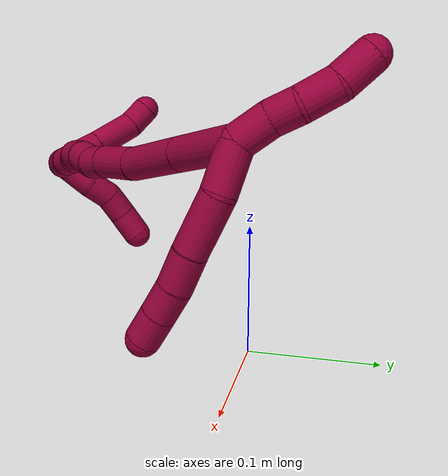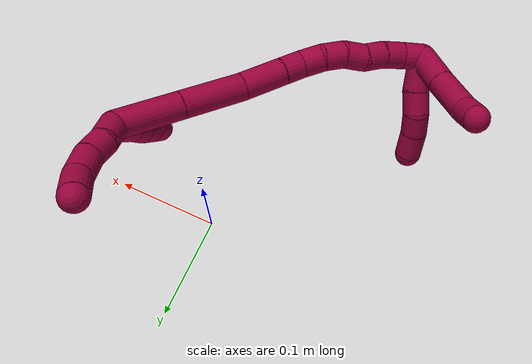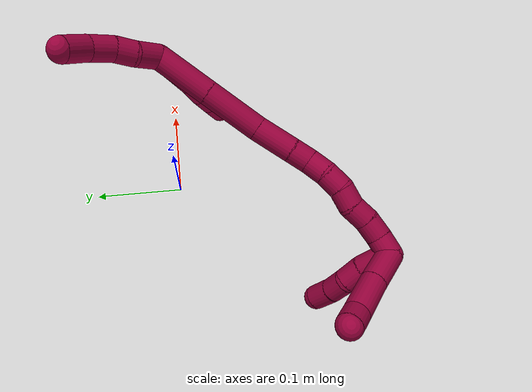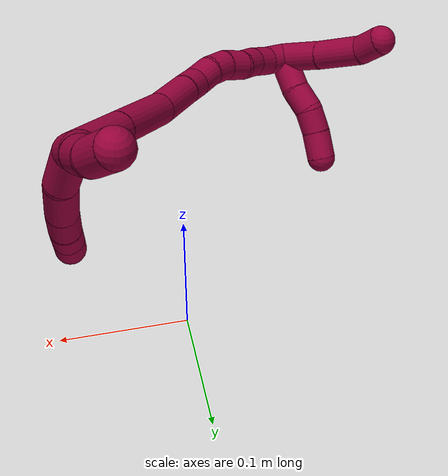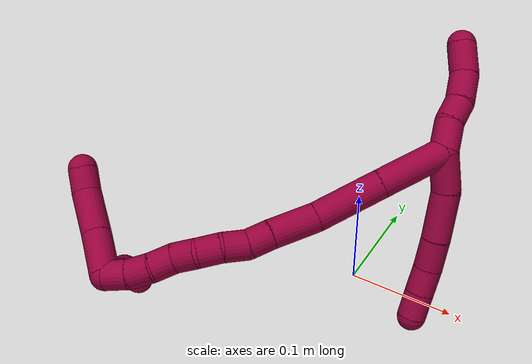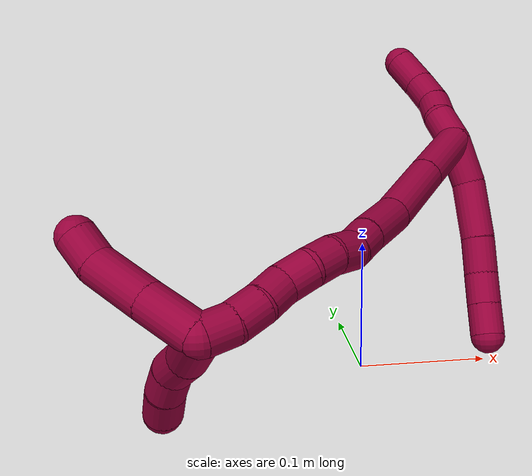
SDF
<sdf version="1.7">
 <world name="default">
  <model name="8">
   <static>0</static>
   <link name="8">
    <collision name="collision-cylinder-e_1_2_8">
     <pose>0.003625 -0.003535 -0.016295 2.92796 0.2141 1.57301</pose>
     <geometry><cylinder><radius>0.0125</radius><length>0.034127</length></cylinder></geometry>
     <surface>
      <friction><ode><mu>1.16</mu><mu2>1.16</mu2><slip1>0</slip1><slip2>0</slip2></ode></friction>
      <contact><ode><kp>1e+06</kp><kd>1</kd><max_vel>0</max_vel><min_depth>0.001</min_depth></ode></contact>
     </surface>
    </collision>
    <visual name="visual-cylinder-e_1_2_8">
     <pose>0.003625 -0.003535 -0.016295 2.92796 0.2141 1.57301</pose>
     <geometry><cylinder><radius>0.0125</radius><length>0.034127</length></cylinder></geometry>
     <material><ambient>0.584314 0 0.227451 1</ambient></material>
    </visual>
    <collision name="collision-cylinder-e_2_8_9">
     <pose>0.006654 -0.014061 -0.052827 2.809 -0.027891 -0.165796</pose>
     <geometry><cylinder><radius>0.0125</radius><length>0.042838</length></cylinder></geometry>
     <surface>
      <friction><ode><mu>1.16</mu><mu2>1.16</mu2><slip1>0</slip1><slip2>0</slip2></ode></friction>
      <contact><ode><kp>1e+06</kp><kd>1</kd><max_vel>0</max_vel><min_depth>0.001</min_depth></ode></contact>
     </surface>
    </collision>
    <visual name="visual-cylinder-e_2_8_9">
     <pose>0.006654 -0.014061 -0.052827 2.809 -0.027891 -0.165796</pose>
     <geometry><cylinder><radius>0.0125</radius><length>0.042838</length></cylinder></geometry>
     <material><ambient>0.584314 0 0.227451 1</ambient></material>
    </visual>
    <collision name="collision-cylinder-e_3_9_10">
     <pose>0.00491 -0.024851 -0.085924 2.85429 -0.085277 -0.573635</pose>
     <geometry><cylinder><radius>0.0125</radius><length>0.026915</length></cylinder></geometry>
     <surface>
      <friction><ode><mu>1.16</mu><mu2>1.16</mu2><slip1>0</slip1><slip2>0</slip2></ode></friction>
      <contact><ode><kp>1e+06</kp><kd>1</kd><max_vel>0</max_vel><min_depth>0.001</min_depth></ode></contact>
     </surface>
    </collision>
    <visual name="visual-cylinder-e_3_9_10">
     <pose>0.00491 -0.024851 -0.085924 2.85429 -0.085277 -0.573635</pose>
     <geometry><cylinder><radius>0.0125</radius><length>0.026915</length></cylinder></geometry>
     <material><ambient>0.584314 0 0.227451 1</ambient></material>
    </visual>
    <collision name="collision-cylinder-e_4_10_11">
     <pose>0.002238 -0.033153 -0.109419 2.74117 -0.131373 -0.626934</pose>
     <geometry><cylinder><radius>0.0125</radius><length>0.023302</length></cylinder></geometry>
     <surface>
      <friction><ode><mu>1.16</mu><mu2>1.16</mu2><slip1>0</slip1><slip2>0</slip2></ode></friction>
      <contact><ode><kp>1e+06</kp><kd>1</kd><max_vel>0</max_vel><min_depth>0.001</min_depth></ode></contact>
     </surface>
    </collision>
    <visual name="visual-cylinder-e_4_10_11">
     <pose>0.002238 -0.033153 -0.109419 2.74117 -0.131373 -0.626934</pose>
     <geometry><cylinder><radius>0.0125</radius><length>0.023302</length></cylinder></geometry>
     <material><ambient>0.584314 0 0.227451 1</ambient></material>
    </visual>
    <collision name="collision-cylinder-e_5_11_6">
     <pose>-0.000713 -0.042183 -0.130431 2.7301 -0.125192 -0.583513</pose>
     <geometry><cylinder><radius>0.0125</radius><length>0.022818</length></cylinder></geometry>
     <surface>
      <friction><ode><mu>1.16</mu><mu2>1.16</mu2><slip1>0</slip1><slip2>0</slip2></ode></friction>
      <contact><ode><kp>1e+06</kp><kd>1</kd><max_vel>0</max_vel><min_depth>0.001</min_depth></ode></contact>
     </surface>
    </collision>
    <visual name="visual-cylinder-e_5_11_6">
     <pose>-0.000713 -0.042183 -0.130431 2.7301 -0.125192 -0.583513</pose>
     <geometry><cylinder><radius>0.0125</radius><length>0.022818</length></cylinder></geometry>
     <material><ambient>0.584314 0 0.227451 1</ambient></material>
    </visual>
    <collision name="collision-cylinder-e_1_2_12">
     <pose>-0.000924 0.009772 0.008682 -0.844384 -0.07054 0.031697</pose>
     <geometry><cylinder><radius>0.0125</radius><length>0.026208</length></cylinder></geometry>
     <surface>
      <friction><ode><mu>1.16</mu><mu2>1.16</mu2><slip1>0</slip1><slip2>0</slip2></ode></friction>
      <contact><ode><kp>1e+06</kp><kd>1</kd><max_vel>0</max_vel><min_depth>0.001</min_depth></ode></contact>
     </surface>
    </collision>
    <visual name="visual-cylinder-e_1_2_12">
     <pose>-0.000924 0.009772 0.008682 -0.844384 -0.07054 0.031697</pose>
     <geometry><cylinder><radius>0.0125</radius><length>0.026208</length></cylinder></geometry>
     <material><ambient>0.584314 0 0.227451 1</ambient></material>
    </visual>
    <collision name="collision-cylinder-e_2_12_13">
     <pose>-4.4e-05 0.028055 0.022989 -0.986831 0.174919 -0.094239</pose>
     <geometry><cylinder><radius>0.0125</radius><length>0.020721</length></cylinder></geometry>
     <surface>
      <friction><ode><mu>1.16</mu><mu2>1.16</mu2><slip1>0</slip1><slip2>0</slip2></ode></friction>
      <contact><ode><kp>1e+06</kp><kd>1</kd><max_vel>0</max_vel><min_depth>0.001</min_depth></ode></contact>
     </surface>
    </collision>
    <visual name="visual-cylinder-e_2_12_13">
     <pose>-4.4e-05 0.028055 0.022989 -0.986831 0.174919 -0.094239</pose>
     <geometry><cylinder><radius>0.0125</radius><length>0.020721</length></cylinder></geometry>
     <material><ambient>0.584314 0 0.227451 1</ambient></material>
    </visual>
    <collision name="collision-cylinder-e_3_13_14">
     <pose>0.000544 0.046957 0.035995 -0.953165 -0.095048 0.049098</pose>
     <geometry><cylinder><radius>0.0125</radius><length>0.025607</length></cylinder></geometry>
     <surface>
      <friction><ode><mu>1.16</mu><mu2>1.16</mu2><slip1>0</slip1><slip2>0</slip2></ode></friction>
      <contact><ode><kp>1e+06</kp><kd>1</kd><max_vel>0</max_vel><min_depth>0.001</min_depth></ode></contact>
     </surface>
    </collision>
    <visual name="visual-cylinder-e_3_13_14">
     <pose>0.000544 0.046957 0.035995 -0.953165 -0.095048 0.049098</pose>
     <geometry><cylinder><radius>0.0125</radius><length>0.025607</length></cylinder></geometry>
     <material><ambient>0.584314 0 0.227451 1</ambient></material>
    </visual>
    <collision name="collision-cylinder-e_4_14_5">
     <pose>-0.004915 0.066334 0.052854 -0.758737 -0.314132 0.126111</pose>
     <geometry><cylinder><radius>0.0125</radius><length>0.027464</length></cylinder></geometry>
     <surface>
      <friction><ode><mu>1.16</mu><mu2>1.16</mu2><slip1>0</slip1><slip2>0</slip2></ode></friction>
      <contact><ode><kp>1e+06</kp><kd>1</kd><max_vel>0</max_vel><min_depth>0.001</min_depth></ode></contact>
     </surface>
    </collision>
    <visual name="visual-cylinder-e_4_14_5">
     <pose>-0.004915 0.066334 0.052854 -0.758737 -0.314132 0.126111</pose>
     <geometry><cylinder><radius>0.0125</radius><length>0.027464</length></cylinder></geometry>
     <material><ambient>0.584314 0 0.227451 1</ambient></material>
    </visual>
    <collision name="collision-cylinder-e_1_2_15">
     <pose>-0.020947 -0.018751 -0.009839 2.05402 -0.779978 -1.19417</pose>
     <geometry><cylinder><radius>0.0125</radius><length>0.059571</length></cylinder></geometry>
     <surface>
      <friction><ode><mu>1.16</mu><mu2>1.16</mu2><slip1>0</slip1><slip2>0</slip2></ode></friction>
      <contact><ode><kp>1e+06</kp><kd>1</kd><max_vel>0</max_vel><min_depth>0.001</min_depth></ode></contact>
     </surface>
    </collision>
    <visual name="visual-cylinder-e_1_2_15">
     <pose>-0.020947 -0.018751 -0.009839 2.05402 -0.779978 -1.19417</pose>
     <geometry><cylinder><radius>0.0125</radius><length>0.059571</length></cylinder></geometry>
     <material><ambient>0.584314 0 0.227451 1</ambient></material>
    </visual>
    <collision name="collision-cylinder-e_2_15_16">
     <pose>-0.062739 -0.056273 -0.029652 2.05921 -0.775621 -1.19386</pose>
     <geometry><cylinder><radius>0.0125</radius><length>0.059543</length></cylinder></geometry>
     <surface>
      <friction><ode><mu>1.16</mu><mu2>1.16</mu2><slip1>0</slip1><slip2>0</slip2></ode></friction>
      <contact><ode><kp>1e+06</kp><kd>1</kd><max_vel>0</max_vel><min_depth>0.001</min_depth></ode></contact>
     </surface>
    </collision>
    <visual name="visual-cylinder-e_2_15_16">
     <pose>-0.062739 -0.056273 -0.029652 2.05921 -0.775621 -1.19386</pose>
     <geometry><cylinder><radius>0.0125</radius><length>0.059543</length></cylinder></geometry>
     <material><ambient>0.584314 0 0.227451 1</ambient></material>
    </visual>
    <collision name="collision-cylinder-e_3_16_17">
     <pose>-0.098054 -0.088365 -0.0433 1.83991 -0.808448 -1.02362</pose>
     <geometry><cylinder><radius>0.0125</radius><length>0.040017</length></cylinder></geometry>
     <surface>
      <friction><ode><mu>1.16</mu><mu2>1.16</mu2><slip1>0</slip1><slip2>0</slip2></ode></friction>
      <contact><ode><kp>1e+06</kp><kd>1</kd><max_vel>0</max_vel><min_depth>0.001</min_depth></ode></contact>
     </surface>
    </collision>
    <visual name="visual-cylinder-e_3_16_17">
     <pose>-0.098054 -0.088365 -0.0433 1.83991 -0.808448 -1.02362</pose>
     <geometry><cylinder><radius>0.0125</radius><length>0.040017</length></cylinder></geometry>
     <material><ambient>0.584314 0 0.227451 1</ambient></material>
    </visual>
    <collision name="collision-cylinder-e_4_17_18">
     <pose>-0.119615 -0.108475 -0.049445 1.91989 -0.776006 -1.05674</pose>
     <geometry><cylinder><radius>0.0125</radius><length>0.020244</length></cylinder></geometry>
     <surface>
      <friction><ode><mu>1.16</mu><mu2>1.16</mu2><slip1>0</slip1><slip2>0</slip2></ode></friction>
      <contact><ode><kp>1e+06</kp><kd>1</kd><max_vel>0</max_vel><min_depth>0.001</min_depth></ode></contact>
     </surface>
    </collision>
    <visual name="visual-cylinder-e_4_17_18">
     <pose>-0.119615 -0.108475 -0.049445 1.91989 -0.776006 -1.05674</pose>
     <geometry><cylinder><radius>0.0125</radius><length>0.020244</length></cylinder></geometry>
     <material><ambient>0.584314 0 0.227451 1</ambient></material>
    </visual>
    <collision name="collision-cylinder-e_5_18_19">
     <pose>-0.135174 -0.121062 -0.051706 1.5346 -0.97014 -0.940582</pose>
     <geometry><cylinder><radius>0.0125</radius><length>0.020532</length></cylinder></geometry>
     <surface>
      <friction><ode><mu>1.16</mu><mu2>1.16</mu2><slip1>0</slip1><slip2>0</slip2></ode></friction>
      <contact><ode><kp>1e+06</kp><kd>1</kd><max_vel>0</max_vel><min_depth>0.001</min_depth></ode></contact>
     </surface>
    </collision>
    <visual name="visual-cylinder-e_5_18_19">
     <pose>-0.135174 -0.121062 -0.051706 1.5346 -0.97014 -0.940582</pose>
     <geometry><cylinder><radius>0.0125</radius><length>0.020532</length></cylinder></geometry>
     <material><ambient>0.584314 0 0.227451 1</ambient></material>
    </visual>
    <collision name="collision-cylinder-e_6_19_20">
     <pose>-0.152175 -0.131778 -0.053364 1.93375 -1.01828 -1.36057</pose>
     <geometry><cylinder><radius>0.0125</radius><length>0.020047</length></cylinder></geometry>
     <surface>
      <friction><ode><mu>1.16</mu><mu2>1.16</mu2><slip1>0</slip1><slip2>0</slip2></ode></friction>
      <contact><ode><kp>1e+06</kp><kd>1</kd><max_vel>0</max_vel><min_depth>0.001</min_depth></ode></contact>
     </surface>
    </collision>
    <visual name="visual-cylinder-e_6_19_20">
     <pose>-0.152175 -0.131778 -0.053364 1.93375 -1.01828 -1.36057</pose>
     <geometry><cylinder><radius>0.0125</radius><length>0.020047</length></cylinder></geometry>
     <material><ambient>0.584314 0 0.227451 1</ambient></material>
    </visual>
    <collision name="collision-cylinder-e_7_20_21">
     <pose>-0.169811 -0.139131 -0.05861 2.51704 -1.14176 -2.20999</pose>
     <geometry><cylinder><radius>0.0125</radius><length>0.020024</length></cylinder></geometry>
     <surface>
      <friction><ode><mu>1.16</mu><mu2>1.16</mu2><slip1>0</slip1><slip2>0</slip2></ode></friction>
      <contact><ode><kp>1e+06</kp><kd>1</kd><max_vel>0</max_vel><min_depth>0.001</min_depth></ode></contact>
     </surface>
    </collision>
    <visual name="visual-cylinder-e_7_20_21">
     <pose>-0.169811 -0.139131 -0.05861 2.51704 -1.14176 -2.20999</pose>
     <geometry><cylinder><radius>0.0125</radius><length>0.020024</length></cylinder></geometry>
     <material><ambient>0.584314 0 0.227451 1</ambient></material>
    </visual>
    <collision name="collision-cylinder-e_8_21_22">
     <pose>-0.186661 -0.146955 -0.065324 2.12504 -0.885081 -1.40972</pose>
     <geometry><cylinder><radius>0.0125</radius><length>0.020014</length></cylinder></geometry>
     <surface>
      <friction><ode><mu>1.16</mu><mu2>1.16</mu2><slip1>0</slip1><slip2>0</slip2></ode></friction>
      <contact><ode><kp>1e+06</kp><kd>1</kd><max_vel>0</max_vel><min_depth>0.001</min_depth></ode></contact>
     </surface>
    </collision>
    <visual name="visual-cylinder-e_8_21_22">
     <pose>-0.186661 -0.146955 -0.065324 2.12504 -0.885081 -1.40972</pose>
     <geometry><cylinder><radius>0.0125</radius><length>0.020014</length></cylinder></geometry>
     <material><ambient>0.584314 0 0.227451 1</ambient></material>
    </visual>
    <collision name="collision-cylinder-e_9_22_23">
     <pose>-0.203092 -0.155972 -0.07204 2.3209 -1.05194 -1.85535</pose>
     <geometry><cylinder><radius>0.0125</radius><length>0.020005</length></cylinder></geometry>
     <surface>
      <friction><ode><mu>1.16</mu><mu2>1.16</mu2><slip1>0</slip1><slip2>0</slip2></ode></friction>
      <contact><ode><kp>1e+06</kp><kd>1</kd><max_vel>0</max_vel><min_depth>0.001</min_depth></ode></contact>
     </surface>
    </collision>
    <visual name="visual-cylinder-e_9_22_23">
     <pose>-0.203092 -0.155972 -0.07204 2.3209 -1.05194 -1.85535</pose>
     <geometry><cylinder><radius>0.0125</radius><length>0.020005</length></cylinder></geometry>
     <material><ambient>0.584314 0 0.227451 1</ambient></material>
    </visual>
    <collision name="collision-cylinder-e_10_23_1">
     <pose>-0.221314 -0.162174 -0.076992 2.11863 -1.26459 -1.83408</pose>
     <geometry><cylinder><radius>0.0125</radius><length>0.020003</length></cylinder></geometry>
     <surface>
      <friction><ode><mu>1.16</mu><mu2>1.16</mu2><slip1>0</slip1><slip2>0</slip2></ode></friction>
      <contact><ode><kp>1e+06</kp><kd>1</kd><max_vel>0</max_vel><min_depth>0.001</min_depth></ode></contact>
     </surface>
    </collision>
    <visual name="visual-cylinder-e_10_23_1">
     <pose>-0.221314 -0.162174 -0.076992 2.11863 -1.26459 -1.83408</pose>
     <geometry><cylinder><radius>0.0125</radius><length>0.020003</length></cylinder></geometry>
     <material><ambient>0.584314 0 0.227451 1</ambient></material>
    </visual>
    <collision name="collision-cylinder-e_1_1_24">
     <pose>-0.232457 -0.151592 -0.087445 -2.16472 -0.100851 0.189383</pose>
     <geometry><cylinder><radius>0.0125</radius><length>0.031911</length></cylinder></geometry>
     <surface>
      <friction><ode><mu>1.16</mu><mu2>1.16</mu2><slip1>0</slip1><slip2>0</slip2></ode></friction>
      <contact><ode><kp>1e+06</kp><kd>1</kd><max_vel>0</max_vel><min_depth>0.001</min_depth></ode></contact>
     </surface>
    </collision>
    <visual name="visual-cylinder-e_1_1_24">
     <pose>-0.232457 -0.151592 -0.087445 -2.16472 -0.100851 0.189383</pose>
     <geometry><cylinder><radius>0.0125</radius><length>0.031911</length></cylinder></geometry>
     <material><ambient>0.584314 0 0.227451 1</ambient></material>
    </visual>
    <collision name="collision-cylinder-e_2_24_25">
     <pose>-0.237387 -0.129468 -0.101958 -2.13127 -0.304152 0.540691</pose>
     <geometry><cylinder><radius>0.0125</radius><length>0.022195</length></cylinder></geometry>
     <surface>
      <friction><ode><mu>1.16</mu><mu2>1.16</mu2><slip1>0</slip1><slip2>0</slip2></ode></friction>
      <contact><ode><kp>1e+06</kp><kd>1</kd><max_vel>0</max_vel><min_depth>0.001</min_depth></ode></contact>
     </surface>
    </collision>
    <visual name="visual-cylinder-e_2_24_25">
     <pose>-0.237387 -0.129468 -0.101958 -2.13127 -0.304152 0.540691</pose>
     <geometry><cylinder><radius>0.0125</radius><length>0.022195</length></cylinder></geometry>
     <material><ambient>0.584314 0 0.227451 1</ambient></material>
    </visual>
    <collision name="collision-cylinder-e_3_25_26">
     <pose>-0.242483 -0.113843 -0.11567 -2.45274 -0.167665 0.460194</pose>
     <geometry><cylinder><radius>0.0125</radius><length>0.021242</length></cylinder></geometry>
     <surface>
      <friction><ode><mu>1.16</mu><mu2>1.16</mu2><slip1>0</slip1><slip2>0</slip2></ode></friction>
      <contact><ode><kp>1e+06</kp><kd>1</kd><max_vel>0</max_vel><min_depth>0.001</min_depth></ode></contact>
     </surface>
    </collision>
    <visual name="visual-cylinder-e_3_25_26">
     <pose>-0.242483 -0.113843 -0.11567 -2.45274 -0.167665 0.460194</pose>
     <geometry><cylinder><radius>0.0125</radius><length>0.021242</length></cylinder></geometry>
     <material><ambient>0.584314 0 0.227451 1</ambient></material>
    </visual>
    <collision name="collision-cylinder-e_4_26_4">
     <pose>-0.244704 -0.099155 -0.133094 -2.43133 -0.036406 0.098101</pose>
     <geometry><cylinder><radius>0.0125</radius><length>0.024652</length></cylinder></geometry>
     <surface>
      <friction><ode><mu>1.16</mu><mu2>1.16</mu2><slip1>0</slip1><slip2>0</slip2></ode></friction>
      <contact><ode><kp>1e+06</kp><kd>1</kd><max_vel>0</max_vel><min_depth>0.001</min_depth></ode></contact>
     </surface>
    </collision>
    <visual name="visual-cylinder-e_4_26_4">
     <pose>-0.244704 -0.099155 -0.133094 -2.43133 -0.036406 0.098101</pose>
     <geometry><cylinder><radius>0.0125</radius><length>0.024652</length></cylinder></geometry>
     <material><ambient>0.584314 0 0.227451 1</ambient></material>
    </visual>
    <collision name="collision-cylinder-e_1_1_27">
     <pose>-0.241844 -0.151316 -0.070462 -1.02814 -0.611308 0.352681</pose>
     <geometry><cylinder><radius>0.0125</radius><length>0.038308</length></cylinder></geometry>
     <surface>
      <friction><ode><mu>1.16</mu><mu2>1.16</mu2><slip1>0</slip1><slip2>0</slip2></ode></friction>
      <contact><ode><kp>1e+06</kp><kd>1</kd><max_vel>0</max_vel><min_depth>0.001</min_depth></ode></contact>
     </surface>
    </collision>
    <visual name="visual-cylinder-e_1_1_27">
     <pose>-0.241844 -0.151316 -0.070462 -1.02814 -0.611308 0.352681</pose>
     <geometry><cylinder><radius>0.0125</radius><length>0.038308</length></cylinder></geometry>
     <material><ambient>0.584314 0 0.227451 1</ambient></material>
    </visual>
    <collision name="collision-cylinder-e_2_27_28">
     <pose>-0.264671 -0.124453 -0.053026 -0.96337 -0.626332 0.335379</pose>
     <geometry><cylinder><radius>0.0125</radius><length>0.040378</length></cylinder></geometry>
     <surface>
      <friction><ode><mu>1.16</mu><mu2>1.16</mu2><slip1>0</slip1><slip2>0</slip2></ode></friction>
      <contact><ode><kp>1e+06</kp><kd>1</kd><max_vel>0</max_vel><min_depth>0.001</min_depth></ode></contact>
     </surface>
    </collision>
    <visual name="visual-cylinder-e_2_27_28">
     <pose>-0.264671 -0.124453 -0.053026 -0.96337 -0.626332 0.335379</pose>
     <geometry><cylinder><radius>0.0125</radius><length>0.040378</length></cylinder></geometry>
     <material><ambient>0.584314 0 0.227451 1</ambient></material>
    </visual>
    <collision name="collision-cylinder-e_3_28_3">
     <pose>-0.281108 -0.105204 -0.036039 -0.650194 -0.446522 0.152757</pose>
     <geometry><cylinder><radius>0.0125</radius><length>0.021314</length></cylinder></geometry>
     <surface>
      <friction><ode><mu>1.16</mu><mu2>1.16</mu2><slip1>0</slip1><slip2>0</slip2></ode></friction>
      <contact><ode><kp>1e+06</kp><kd>1</kd><max_vel>0</max_vel><min_depth>0.001</min_depth></ode></contact>
     </surface>
    </collision>
    <visual name="visual-cylinder-e_3_28_3">
     <pose>-0.281108 -0.105204 -0.036039 -0.650194 -0.446522 0.152757</pose>
     <geometry><cylinder><radius>0.0125</radius><length>0.021314</length></cylinder></geometry>
     <material><ambient>0.584314 0 0.227451 1</ambient></material>
    </visual>
    <collision name="collision-sphere-3">
     <pose>-0.28571 -0.099385 -0.028388 0 -0 0</pose>
     <geometry><sphere><radius>0.0125</radius></sphere></geometry>
     <surface>
      <friction><ode><mu>1.16</mu><mu2>1.16</mu2><slip1>0</slip1><slip2>0</slip2></ode></friction>
      <contact><ode><kp>1e+06</kp><kd>1</kd><max_vel>0</max_vel><min_depth>0.001</min_depth></ode></contact>
     </surface>
    </collision>
    <visual name="visual-sphere-3">
     <pose>-0.28571 -0.099385 -0.028388 0 -0 0</pose>
     <geometry><sphere><radius>0.0125</radius></sphere></geometry>
     <material><ambient>0.584314 0 0.227451 1</ambient></material>
    </visual>
    <collision name="collision-sphere-28">
     <pose>-0.276505 -0.111023 -0.04369 0 -0 0</pose>
     <geometry><sphere><radius>0.0125</radius></sphere></geometry>
     <surface>
      <friction><ode><mu>1.16</mu><mu2>1.16</mu2><slip1>0</slip1><slip2>0</slip2></ode></friction>
      <contact><ode><kp>1e+06</kp><kd>1</kd><max_vel>0</max_vel><min_depth>0.001</min_depth></ode></contact>
     </surface>
    </collision>
    <visual name="visual-sphere-28">
     <pose>-0.276505 -0.111023 -0.04369 0 -0 0</pose>
     <geometry><sphere><radius>0.0125</radius></sphere></geometry>
     <material><ambient>0.584314 0 0.227451 1</ambient></material>
    </visual>
    <collision name="collision-sphere-27">
     <pose>-0.252837 -0.137884 -0.062362 0 -0 0</pose>
     <geometry><sphere><radius>0.0125</radius></sphere></geometry>
     <surface>
      <friction><ode><mu>1.16</mu><mu2>1.16</mu2><slip1>0</slip1><slip2>0</slip2></ode></friction>
      <contact><ode><kp>1e+06</kp><kd>1</kd><max_vel>0</max_vel><min_depth>0.001</min_depth></ode></contact>
     </surface>
    </collision>
    <visual name="visual-sphere-27">
     <pose>-0.252837 -0.137884 -0.062362 0 -0 0</pose>
     <geometry><sphere><radius>0.0125</radius></sphere></geometry>
     <material><ambient>0.584314 0 0.227451 1</ambient></material>
    </visual>
    <collision name="collision-sphere-4">
     <pose>-0.245153 -0.091123 -0.142433 0 -0 0</pose>
     <geometry><sphere><radius>0.0125</radius></sphere></geometry>
     <surface>
      <friction><ode><mu>1.16</mu><mu2>1.16</mu2><slip1>0</slip1><slip2>0</slip2></ode></friction>
      <contact><ode><kp>1e+06</kp><kd>1</kd><max_vel>0</max_vel><min_depth>0.001</min_depth></ode></contact>
     </surface>
    </collision>
    <visual name="visual-sphere-4">
     <pose>-0.245153 -0.091123 -0.142433 0 -0 0</pose>
     <geometry><sphere><radius>0.0125</radius></sphere></geometry>
     <material><ambient>0.584314 0 0.227451 1</ambient></material>
    </visual>
    <collision name="collision-sphere-26">
     <pose>-0.244255 -0.107186 -0.123754 0 -0 0</pose>
     <geometry><sphere><radius>0.0125</radius></sphere></geometry>
     <surface>
      <friction><ode><mu>1.16</mu><mu2>1.16</mu2><slip1>0</slip1><slip2>0</slip2></ode></friction>
      <contact><ode><kp>1e+06</kp><kd>1</kd><max_vel>0</max_vel><min_depth>0.001</min_depth></ode></contact>
     </surface>
    </collision>
    <visual name="visual-sphere-26">
     <pose>-0.244255 -0.107186 -0.123754 0 -0 0</pose>
     <geometry><sphere><radius>0.0125</radius></sphere></geometry>
     <material><ambient>0.584314 0 0.227451 1</ambient></material>
    </visual>
    <collision name="collision-sphere-25">
     <pose>-0.24071 -0.120499 -0.107586 0 -0 0</pose>
     <geometry><sphere><radius>0.0125</radius></sphere></geometry>
     <surface>
      <friction><ode><mu>1.16</mu><mu2>1.16</mu2><slip1>0</slip1><slip2>0</slip2></ode></friction>
      <contact><ode><kp>1e+06</kp><kd>1</kd><max_vel>0</max_vel><min_depth>0.001</min_depth></ode></contact>
     </surface>
    </collision>
    <visual name="visual-sphere-25">
     <pose>-0.24071 -0.120499 -0.107586 0 -0 0</pose>
     <geometry><sphere><radius>0.0125</radius></sphere></geometry>
     <material><ambient>0.584314 0 0.227451 1</ambient></material>
    </visual>
    <collision name="collision-sphere-24">
     <pose>-0.234063 -0.138436 -0.096329 0 -0 0</pose>
     <geometry><sphere><radius>0.0125</radius></sphere></geometry>
     <surface>
      <friction><ode><mu>1.16</mu><mu2>1.16</mu2><slip1>0</slip1><slip2>0</slip2></ode></friction>
      <contact><ode><kp>1e+06</kp><kd>1</kd><max_vel>0</max_vel><min_depth>0.001</min_depth></ode></contact>
     </surface>
    </collision>
    <visual name="visual-sphere-24">
     <pose>-0.234063 -0.138436 -0.096329 0 -0 0</pose>
     <geometry><sphere><radius>0.0125</radius></sphere></geometry>
     <material><ambient>0.584314 0 0.227451 1</ambient></material>
    </visual>
    <collision name="collision-sphere-1">
     <pose>-0.23085 -0.164748 -0.078562 0 -0 0</pose>
     <geometry><sphere><radius>0.0125</radius></sphere></geometry>
     <surface>
      <friction><ode><mu>1.16</mu><mu2>1.16</mu2><slip1>0</slip1><slip2>0</slip2></ode></friction>
      <contact><ode><kp>1e+06</kp><kd>1</kd><max_vel>0</max_vel><min_depth>0.001</min_depth></ode></contact>
     </surface>
    </collision>
    <visual name="visual-sphere-1">
     <pose>-0.23085 -0.164748 -0.078562 0 -0 0</pose>
     <geometry><sphere><radius>0.0125</radius></sphere></geometry>
     <material><ambient>0.584314 0 0.227451 1</ambient></material>
    </visual>
    <collision name="collision-sphere-23">
     <pose>-0.211778 -0.1596 -0.075421 0 -0 0</pose>
     <geometry><sphere><radius>0.0125</radius></sphere></geometry>
     <surface>
      <friction><ode><mu>1.16</mu><mu2>1.16</mu2><slip1>0</slip1><slip2>0</slip2></ode></friction>
      <contact><ode><kp>1e+06</kp><kd>1</kd><max_vel>0</max_vel><min_depth>0.001</min_depth></ode></contact>
     </surface>
    </collision>
    <visual name="visual-sphere-23">
     <pose>-0.211778 -0.1596 -0.075421 0 -0 0</pose>
     <geometry><sphere><radius>0.0125</radius></sphere></geometry>
     <material><ambient>0.584314 0 0.227451 1</ambient></material>
    </visual>
    <collision name="collision-sphere-22">
     <pose>-0.194406 -0.152343 -0.068659 0 -0 0</pose>
     <geometry><sphere><radius>0.0125</radius></sphere></geometry>
     <surface>
      <friction><ode><mu>1.16</mu><mu2>1.16</mu2><slip1>0</slip1><slip2>0</slip2></ode></friction>
      <contact><ode><kp>1e+06</kp><kd>1</kd><max_vel>0</max_vel><min_depth>0.001</min_depth></ode></contact>
     </surface>
    </collision>
    <visual name="visual-sphere-22">
     <pose>-0.194406 -0.152343 -0.068659 0 -0 0</pose>
     <geometry><sphere><radius>0.0125</radius></sphere></geometry>
     <material><ambient>0.584314 0 0.227451 1</ambient></material>
    </visual>
    <collision name="collision-sphere-21">
     <pose>-0.178916 -0.141566 -0.061989 0 -0 0</pose>
     <geometry><sphere><radius>0.0125</radius></sphere></geometry>
     <surface>
      <friction><ode><mu>1.16</mu><mu2>1.16</mu2><slip1>0</slip1><slip2>0</slip2></ode></friction>
      <contact><ode><kp>1e+06</kp><kd>1</kd><max_vel>0</max_vel><min_depth>0.001</min_depth></ode></contact>
     </surface>
    </collision>
    <visual name="visual-sphere-21">
     <pose>-0.178916 -0.141566 -0.061989 0 -0 0</pose>
     <geometry><sphere><radius>0.0125</radius></sphere></geometry>
     <material><ambient>0.584314 0 0.227451 1</ambient></material>
    </visual>
    <collision name="collision-sphere-6">
     <pose>-0.002138 -0.046711 -0.140806 0 -0 0</pose>
     <geometry><sphere><radius>0.0125</radius></sphere></geometry>
     <surface>
      <friction><ode><mu>1.16</mu><mu2>1.16</mu2><slip1>0</slip1><slip2>0</slip2></ode></friction>
      <contact><ode><kp>1e+06</kp><kd>1</kd><max_vel>0</max_vel><min_depth>0.001</min_depth></ode></contact>
     </surface>
    </collision>
    <visual name="visual-sphere-6">
     <pose>-0.002138 -0.046711 -0.140806 0 -0 0</pose>
     <geometry><sphere><radius>0.0125</radius></sphere></geometry>
     <material><ambient>0.584314 0 0.227451 1</ambient></material>
    </visual>
    <collision name="collision-sphere-11">
     <pose>0.000711 -0.037655 -0.120056 0 -0 0</pose>
     <geometry><sphere><radius>0.0125</radius></sphere></geometry>
     <surface>
      <friction><ode><mu>1.16</mu><mu2>1.16</mu2><slip1>0</slip1><slip2>0</slip2></ode></friction>
      <contact><ode><kp>1e+06</kp><kd>1</kd><max_vel>0</max_vel><min_depth>0.001</min_depth></ode></contact>
     </surface>
    </collision>
    <visual name="visual-sphere-11">
     <pose>0.000711 -0.037655 -0.120056 0 -0 0</pose>
     <geometry><sphere><radius>0.0125</radius></sphere></geometry>
     <material><ambient>0.584314 0 0.227451 1</ambient></material>
    </visual>
    <collision name="collision-sphere-10">
     <pose>0.003764 -0.02865 -0.098783 0 -0 0</pose>
     <geometry><sphere><radius>0.0125</radius></sphere></geometry>
     <surface>
      <friction><ode><mu>1.16</mu><mu2>1.16</mu2><slip1>0</slip1><slip2>0</slip2></ode></friction>
      <contact><ode><kp>1e+06</kp><kd>1</kd><max_vel>0</max_vel><min_depth>0.001</min_depth></ode></contact>
     </surface>
    </collision>
    <visual name="visual-sphere-10">
     <pose>0.003764 -0.02865 -0.098783 0 -0 0</pose>
     <geometry><sphere><radius>0.0125</radius></sphere></geometry>
     <material><ambient>0.584314 0 0.227451 1</ambient></material>
    </visual>
    <collision name="collision-sphere-9">
     <pose>0.006056 -0.021051 -0.073065 0 -0 0</pose>
     <geometry><sphere><radius>0.0125</radius></sphere></geometry>
     <surface>
      <friction><ode><mu>1.16</mu><mu2>1.16</mu2><slip1>0</slip1><slip2>0</slip2></ode></friction>
      <contact><ode><kp>1e+06</kp><kd>1</kd><max_vel>0</max_vel><min_depth>0.001</min_depth></ode></contact>
     </surface>
    </collision>
    <visual name="visual-sphere-9">
     <pose>0.006056 -0.021051 -0.073065 0 -0 0</pose>
     <geometry><sphere><radius>0.0125</radius></sphere></geometry>
     <material><ambient>0.584314 0 0.227451 1</ambient></material>
    </visual>
    <collision name="collision-sphere-2">
     <geometry><sphere><radius>0.0125</radius></sphere></geometry>
     <surface>
      <friction><ode><mu>1.16</mu><mu2>1.16</mu2><slip1>0</slip1><slip2>0</slip2></ode></friction>
      <contact><ode><kp>1e+06</kp><kd>1</kd><max_vel>0</max_vel><min_depth>0.001</min_depth></ode></contact>
     </surface>
    </collision>
    <visual name="visual-sphere-2">
     <geometry><sphere><radius>0.0125</radius></sphere></geometry>
     <material><ambient>0.584314 0 0.227451 1</ambient></material>
    </visual>
    <collision name="collision-sphere-19">
     <pose>-0.143643 -0.12686 -0.051496 0 -0 0</pose>
     <geometry><sphere><radius>0.0125</radius></sphere></geometry>
     <surface>
      <friction><ode><mu>1.16</mu><mu2>1.16</mu2><slip1>0</slip1><slip2>0</slip2></ode></friction>
      <contact><ode><kp>1e+06</kp><kd>1</kd><max_vel>0</max_vel><min_depth>0.001</min_depth></ode></contact>
     </surface>
    </collision>
    <visual name="visual-sphere-19">
     <pose>-0.143643 -0.12686 -0.051496 0 -0 0</pose>
     <geometry><sphere><radius>0.0125</radius></sphere></geometry>
     <material><ambient>0.584314 0 0.227451 1</ambient></material>
    </visual>
    <collision name="collision-sphere-8">
     <pose>0.007251 -0.00707 -0.03259 0 -0 0</pose>
     <geometry><sphere><radius>0.0125</radius></sphere></geometry>
     <surface>
      <friction><ode><mu>1.16</mu><mu2>1.16</mu2><slip1>0</slip1><slip2>0</slip2></ode></friction>
      <contact><ode><kp>1e+06</kp><kd>1</kd><max_vel>0</max_vel><min_depth>0.001</min_depth></ode></contact>
     </surface>
    </collision>
    <visual name="visual-sphere-8">
     <pose>0.007251 -0.00707 -0.03259 0 -0 0</pose>
     <geometry><sphere><radius>0.0125</radius></sphere></geometry>
     <material><ambient>0.584314 0 0.227451 1</ambient></material>
    </visual>
    <collision name="collision-sphere-12">
     <pose>-0.001847 0.019543 0.017364 0 -0 0</pose>
     <geometry><sphere><radius>0.0125</radius></sphere></geometry>
     <surface>
      <friction><ode><mu>1.16</mu><mu2>1.16</mu2><slip1>0</slip1><slip2>0</slip2></ode></friction>
      <contact><ode><kp>1e+06</kp><kd>1</kd><max_vel>0</max_vel><min_depth>0.001</min_depth></ode></contact>
     </surface>
    </collision>
    <visual name="visual-sphere-12">
     <pose>-0.001847 0.019543 0.017364 0 -0 0</pose>
     <geometry><sphere><radius>0.0125</radius></sphere></geometry>
     <material><ambient>0.584314 0 0.227451 1</ambient></material>
    </visual>
    <collision name="collision-sphere-13">
     <pose>0.001759 0.036567 0.028614 0 -0 0</pose>
     <geometry><sphere><radius>0.0125</radius></sphere></geometry>
     <surface>
      <friction><ode><mu>1.16</mu><mu2>1.16</mu2><slip1>0</slip1><slip2>0</slip2></ode></friction>
      <contact><ode><kp>1e+06</kp><kd>1</kd><max_vel>0</max_vel><min_depth>0.001</min_depth></ode></contact>
     </surface>
    </collision>
    <visual name="visual-sphere-13">
     <pose>0.001759 0.036567 0.028614 0 -0 0</pose>
     <geometry><sphere><radius>0.0125</radius></sphere></geometry>
     <material><ambient>0.584314 0 0.227451 1</ambient></material>
    </visual>
    <collision name="collision-sphere-14">
     <pose>-0.000671 0.057348 0.043376 0 -0 0</pose>
     <geometry><sphere><radius>0.0125</radius></sphere></geometry>
     <surface>
      <friction><ode><mu>1.16</mu><mu2>1.16</mu2><slip1>0</slip1><slip2>0</slip2></ode></friction>
      <contact><ode><kp>1e+06</kp><kd>1</kd><max_vel>0</max_vel><min_depth>0.001</min_depth></ode></contact>
     </surface>
    </collision>
    <visual name="visual-sphere-14">
     <pose>-0.000671 0.057348 0.043376 0 -0 0</pose>
     <geometry><sphere><radius>0.0125</radius></sphere></geometry>
     <material><ambient>0.584314 0 0.227451 1</ambient></material>
    </visual>
    <collision name="collision-sphere-5">
     <pose>-0.009158 0.075319 0.062332 0 -0 0</pose>
     <geometry><sphere><radius>0.0125</radius></sphere></geometry>
     <surface>
      <friction><ode><mu>1.16</mu><mu2>1.16</mu2><slip1>0</slip1><slip2>0</slip2></ode></friction>
      <contact><ode><kp>1e+06</kp><kd>1</kd><max_vel>0</max_vel><min_depth>0.001</min_depth></ode></contact>
     </surface>
    </collision>
    <visual name="visual-sphere-5">
     <pose>-0.009158 0.075319 0.062332 0 -0 0</pose>
     <geometry><sphere><radius>0.0125</radius></sphere></geometry>
     <material><ambient>0.584314 0 0.227451 1</ambient></material>
    </visual>
    <collision name="collision-sphere-15">
     <pose>-0.041894 -0.037502 -0.019677 0 -0 0</pose>
     <geometry><sphere><radius>0.0125</radius></sphere></geometry>
     <surface>
      <friction><ode><mu>1.16</mu><mu2>1.16</mu2><slip1>0</slip1><slip2>0</slip2></ode></friction>
      <contact><ode><kp>1e+06</kp><kd>1</kd><max_vel>0</max_vel><min_depth>0.001</min_depth></ode></contact>
     </surface>
    </collision>
    <visual name="visual-sphere-15">
     <pose>-0.041894 -0.037502 -0.019677 0 -0 0</pose>
     <geometry><sphere><radius>0.0125</radius></sphere></geometry>
     <material><ambient>0.584314 0 0.227451 1</ambient></material>
    </visual>
    <collision name="collision-sphere-16">
     <pose>-0.083584 -0.075044 -0.039626 0 -0 0</pose>
     <geometry><sphere><radius>0.0125</radius></sphere></geometry>
     <surface>
      <friction><ode><mu>1.16</mu><mu2>1.16</mu2><slip1>0</slip1><slip2>0</slip2></ode></friction>
      <contact><ode><kp>1e+06</kp><kd>1</kd><max_vel>0</max_vel><min_depth>0.001</min_depth></ode></contact>
     </surface>
    </collision>
    <visual name="visual-sphere-16">
     <pose>-0.083584 -0.075044 -0.039626 0 -0 0</pose>
     <geometry><sphere><radius>0.0125</radius></sphere></geometry>
     <material><ambient>0.584314 0 0.227451 1</ambient></material>
    </visual>
    <collision name="collision-sphere-17">
     <pose>-0.112525 -0.101686 -0.046974 0 -0 0</pose>
     <geometry><sphere><radius>0.0125</radius></sphere></geometry>
     <surface>
      <friction><ode><mu>1.16</mu><mu2>1.16</mu2><slip1>0</slip1><slip2>0</slip2></ode></friction>
      <contact><ode><kp>1e+06</kp><kd>1</kd><max_vel>0</max_vel><min_depth>0.001</min_depth></ode></contact>
     </surface>
    </collision>
    <visual name="visual-sphere-17">
     <pose>-0.112525 -0.101686 -0.046974 0 -0 0</pose>
     <geometry><sphere><radius>0.0125</radius></sphere></geometry>
     <material><ambient>0.584314 0 0.227451 1</ambient></material>
    </visual>
    <collision name="collision-sphere-18">
     <pose>-0.126705 -0.115263 -0.051916 0 -0 0</pose>
     <geometry><sphere><radius>0.0125</radius></sphere></geometry>
     <surface>
      <friction><ode><mu>1.16</mu><mu2>1.16</mu2><slip1>0</slip1><slip2>0</slip2></ode></friction>
      <contact><ode><kp>1e+06</kp><kd>1</kd><max_vel>0</max_vel><min_depth>0.001</min_depth></ode></contact>
     </surface>
    </collision>
    <visual name="visual-sphere-18">
     <pose>-0.126705 -0.115263 -0.051916 0 -0 0</pose>
     <geometry><sphere><radius>0.0125</radius></sphere></geometry>
     <material><ambient>0.584314 0 0.227451 1</ambient></material>
    </visual>
    <collision name="collision-sphere-20">
     <pose>-0.160707 -0.136696 -0.055231 0 -0 0</pose>
     <geometry><sphere><radius>0.0125</radius></sphere></geometry>
     <surface>
      <friction><ode><mu>1.16</mu><mu2>1.16</mu2><slip1>0</slip1><slip2>0</slip2></ode></friction>
      <contact><ode><kp>1e+06</kp><kd>1</kd><max_vel>0</max_vel><min_depth>0.001</min_depth></ode></contact>
     </surface>
    </collision>
    <visual name="visual-sphere-20">
     <pose>-0.160707 -0.136696 -0.055231 0 -0 0</pose>
     <geometry><sphere><radius>0.0125</radius></sphere></geometry>
     <material><ambient>0.584314 0 0.227451 1</ambient></material>
    </visual>
    <inertial>
     <pose>-0.109551 -0.069762 -0.048879 0 -0 0</pose>
     <mass>0.75</mass>
     <inertia><ixx>3e-06</ixx><ixy>0</ixy><ixz>0</ixz><iyy>-4e-06</iyy><iyz>0</iyz><izz>5.5e-05</izz></inertia>
    </inertial>
   </link>
   <pose>0.070874 0.003599 0.176994 -0.106091 -0.032207 0.155589</pose>
  </model>
 </world>
</sdf>
